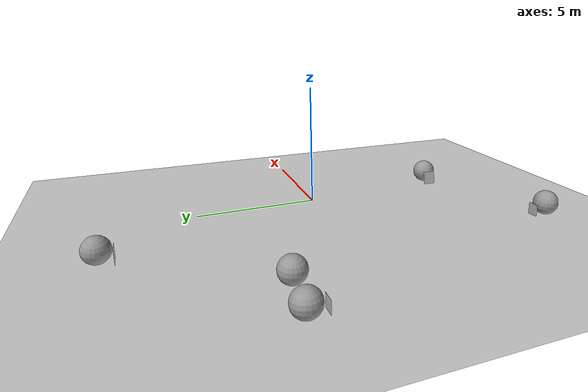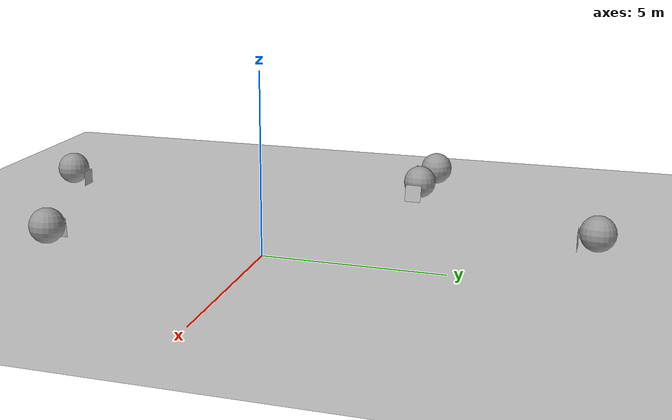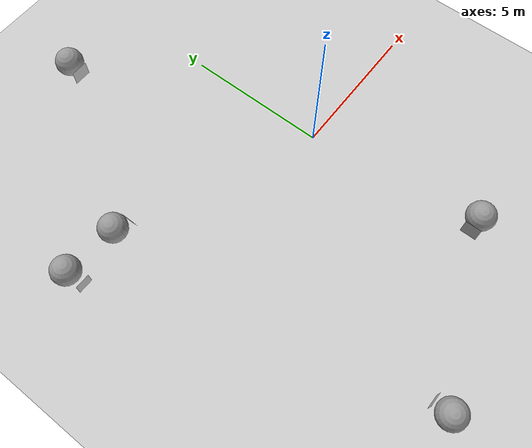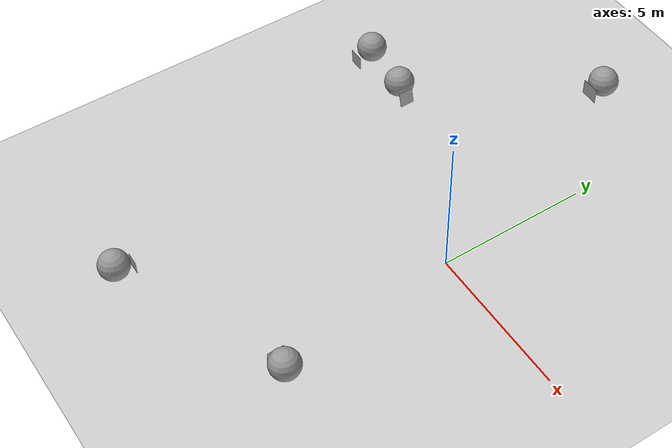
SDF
<sdf version="1.7">
 <world name="default">
  <light name="sun" type="directional">
   <pose>0 0 10 0 -0 0</pose>
   <diffuse>0.8 0.8 0.8 1</diffuse>
   <specular>0.2 0.2 0.2 1</specular>
   <attenuation>
    <range>1000</range>
    <constant>0.9</constant>
    <linear>0.01</linear>
    <quadratic>0.001</quadratic>
   </attenuation>
   <direction>-0.5 0.1 -0.9</direction>
   <spot><inner_angle>0</inner_angle><outer_angle>0</outer_angle><falloff>0</falloff></spot>
  </light>
  <model name="ground_plane">
   <static>1</static>
   <link name="link">
    <collision name="collision">
     <geometry><plane><normal>0 0 1</normal><size>100 100</size></plane></geometry>
     <surface>
      <contact><collide_bitmask>65535</collide_bitmask></contact>
      <friction><ode><mu>100</mu><mu2>50</mu2></ode></friction>
     </surface>
    </collision>
    <visual name="visual">
     <cast_shadows>0</cast_shadows>
     <geometry><plane><normal>0 0 1</normal><size>100 100</size></plane></geometry>
     <material>
      <script><uri>file://media/materials/scripts/gazebo.material</uri><name>Gazebo/Grey</name></script>
     </material>
    </visual>
   </link>
  </model>
  <gravity>0 0 -9.8</gravity>
  <magnetic_field>6e-06 2.3e-05 -4.2e-05</magnetic_field>
  <atmosphere type="adiabatic"/>
  <physics type="ode">
   <max_step_size>0.001</max_step_size>
   <real_time_factor>1</real_time_factor>
   <real_time_update_rate>1000</real_time_update_rate>
  </physics>
  <scene><ambient>0.4 0.4 0.4 1</ambient><background>0.7 0.7 0.7 1</background><shadows>1</shadows></scene>
  <spherical_coordinates>
   <surface_model>EARTH_WGS84</surface_model>
   <latitude_deg>0</latitude_deg>
   <longitude_deg>0</longitude_deg>
   <elevation>0</elevation>
   <heading_deg>0</heading_deg>
  </spherical_coordinates>
  <model name="marker11">
   <static>0</static>
   <link name="marker">
    <inertial>
     <mass>0.1</mass>
     <inertia><ixx>0</ixx><ixy>0</ixy><ixz>0</ixz><iyy>0</iyy><iyz>0</iyz><izz>0</izz></inertia>
    </inertial>
    <visual name="visual">
     <geometry><box><size>0.568736 0.617647 0.001</size></box></geometry>
     <material>
      <script>
       <uri>model://marker11/material/scripts</uri>
       <uri>model://marker11/material/textures</uri>
       <name>Aruco/marker11</name>
      </script>
     </material>
    </visual>
    <collision name="collision"><geometry><box><size>0.568736 0.617647 0.02</size></box></geometry></collision>
    <self_collide>1</self_collide>
   </link>
   <pose>-3.05989 8.03861 0.284388 -0.001297 -1.56887 -1.58219</pose>
  </model>
  <model name="marker12">
   <static>0</static>
   <link name="marker">
    <inertial>
     <mass>0.1</mass>
     <inertia><ixx>0</ixx><ixy>0</ixy><ixz>0</ixz><iyy>0</iyy><iyz>0</iyz><izz>0</izz></inertia>
    </inertial>
    <visual name="visual">
     <geometry><box><size>0.518074 0.498374 0.001</size></box></geometry>
     <material>
      <script>
       <uri>model://marker12/material/scripts</uri>
       <uri>model://marker12/material/textures</uri>
       <name>Aruco/marker12</name>
      </script>
     </material>
    </visual>
    <collision name="collision"><geometry><box><size>0.518074 0.498374 0.02</size></box></geometry></collision>
    <self_collide>1</self_collide>
   </link>
   <pose>-6.20834 2.8244 0.254641 -3.14159 -1.34397 3.13721</pose>
  </model>
  <model name="marker14">
   <static>0</static>
   <link name="marker">
    <inertial>
     <mass>0.1</mass>
     <inertia><ixx>0</ixx><ixy>0</ixy><ixz>0</ixz><iyy>0</iyy><iyz>0</iyz><izz>0</izz></inertia>
    </inertial>
    <visual name="visual">
     <geometry><box><size>0.483286 0.47867 0.001</size></box></geometry>
     <material>
      <script>
       <uri>model://marker14/material/scripts</uri>
       <uri>model://marker14/material/textures</uri>
       <name>Aruco/marker14</name>
      </script>
     </material>
    </visual>
    <collision name="collision"><geometry><box><size>0.483286 0.47867 0.02</size></box></geometry></collision>
    <self_collide>1</self_collide>
   </link>
   <pose>-5.03348 -7.888 0.241643 0.163924 1.57079 1.72005</pose>
  </model>
  <model name="marker15">
   <static>0</static>
   <link name="marker">
    <inertial>
     <mass>0.1</mass>
     <inertia><ixx>0</ixx><ixy>0</ixy><ixz>0</ixz><iyy>0</iyy><iyz>0</iyz><izz>0</izz></inertia>
    </inertial>
    <visual name="visual">
     <geometry><box><size>0.494346 0.513607 0.001</size></box></geometry>
     <material>
      <script>
       <uri>model://marker15/material/scripts</uri>
       <uri>model://marker15/material/textures</uri>
       <name>Aruco/marker15</name>
      </script>
     </material>
    </visual>
    <collision name="collision"><geometry><box><size>0.494346 0.513607 0.02</size></box></geometry></collision>
    <self_collide>1</self_collide>
   </link>
   <pose>-8.64053 2.44414 0.247176 2.67149 -1.57077 2.03262</pose>
  </model>
  <model name="static_sphere_0">
   <link name="link">
    <inertial>
     <mass>1</mass>
     <inertia><ixx>0.1</ixx><ixy>0</ixy><ixz>0</ixz><iyy>0.1</iyy><iyz>0</iyz><izz>0.1</izz></inertia>
    </inertial>
    <visual name="visual">
     <geometry><sphere><radius>0.5</radius></sphere></geometry>
     <material>
      <script><name>Gazebo/Grey</name><uri>file://media/materials/scripts/gazebo.material</uri></script>
      <shader type="pixel"/>
     </material>
    </visual>
    <collision name="collision">
     <geometry><sphere><radius>0.5</radius></sphere></geometry>
     <surface>
      <friction>
       <ode><mu>1</mu><mu2>1</mu2><fdir1>0 0 0</fdir1><slip1>0</slip1><slip2>0</slip2></ode>
       <torsional>
        <coefficient>1</coefficient>
        <patch_radius>0</patch_radius>
        <surface_radius>0</surface_radius>
        <use_patch_radius>1</use_patch_radius>
        <ode><slip>0</slip></ode>
       </torsional>
      </friction>
      <bounce><restitution_coefficient>0</restitution_coefficient><threshold>1e+06</threshold></bounce>
      <contact>
       <collide_without_contact>0</collide_without_contact>
       <collide_without_contact_bitmask>1</collide_without_contact_bitmask>
       <collide_bitmask>1</collide_bitmask>
       <ode>
        <soft_cfm>0</soft_cfm>
        <soft_erp>0.2</soft_erp>
        <kp>1e+13</kp>
        <kd>1</kd>
        <max_vel>0.01</max_vel>
        <min_depth>0</min_depth>
       </ode>
       <bullet>
        <split_impulse>1</split_impulse>
        <split_impulse_penetration_threshold>-0.01</split_impulse_penetration_threshold>
        <soft_cfm>0</soft_cfm>
        <soft_erp>0.2</soft_erp>
        <kp>1e+13</kp>
        <kd>1</kd>
       </bullet>
      </contact>
     </surface>
    </collision>
   </link>
   <static>1</static>
   <pose>-6.77589 2.92367 0.49999 -0.000133 -0.131807 -0.000347</pose>
  </model>
  <model name="static_sphere_0_clone">
   <link name="link">
    <inertial>
     <mass>1</mass>
     <inertia><ixx>0.1</ixx><ixy>0</ixy><ixz>0</ixz><iyy>0.1</iyy><iyz>0</iyz><izz>0.1</izz></inertia>
    </inertial>
    <visual name="visual">
     <geometry><sphere><radius>0.5</radius></sphere></geometry>
     <material>
      <script><name>Gazebo/Grey</name><uri>file://media/materials/scripts/gazebo.material</uri></script>
      <shader type="pixel"/>
     </material>
    </visual>
    <collision name="collision">
     <geometry><sphere><radius>0.5</radius></sphere></geometry>
     <surface>
      <friction>
       <ode><mu>1</mu><mu2>1</mu2><fdir1>0 0 0</fdir1><slip1>0</slip1><slip2>0</slip2></ode>
       <torsional>
        <coefficient>1</coefficient>
        <patch_radius>0</patch_radius>
        <surface_radius>0</surface_radius>
        <use_patch_radius>1</use_patch_radius>
        <ode><slip>0</slip></ode>
       </torsional>
      </friction>
      <bounce><restitution_coefficient>0</restitution_coefficient><threshold>1e+06</threshold></bounce>
      <contact>
       <collide_without_contact>0</collide_without_contact>
       <collide_without_contact_bitmask>1</collide_without_contact_bitmask>
       <collide_bitmask>1</collide_bitmask>
       <ode>
        <soft_cfm>0</soft_cfm>
        <soft_erp>0.2</soft_erp>
        <kp>1e+13</kp>
        <kd>1</kd>
        <max_vel>0.01</max_vel>
        <min_depth>0</min_depth>
       </ode>
       <bullet>
        <split_impulse>1</split_impulse>
        <split_impulse_penetration_threshold>-0.01</split_impulse_penetration_threshold>
        <soft_cfm>0</soft_cfm>
        <soft_erp>0.2</soft_erp>
        <kp>1e+13</kp>
        <kd>1</kd>
       </bullet>
      </contact>
     </surface>
    </collision>
   </link>
   <static>1</static>
   <pose>0.693093 -6.05683 0.49999 -0.000133 -0.131807 -0.000347</pose>
  </model>
  <model name="static_sphere_0_clone_0">
   <link name="link">
    <inertial>
     <mass>1</mass>
     <inertia><ixx>0.1</ixx><ixy>0</ixy><ixz>0</ixz><iyy>0.1</iyy><iyz>0</iyz><izz>0.1</izz></inertia>
    </inertial>
    <visual name="visual">
     <geometry><sphere><radius>0.5</radius></sphere></geometry>
     <material>
      <script><name>Gazebo/Grey</name><uri>file://media/materials/scripts/gazebo.material</uri></script>
      <shader type="pixel"/>
     </material>
    </visual>
    <collision name="collision">
     <geometry><sphere><radius>0.5</radius></sphere></geometry>
     <surface>
      <friction>
       <ode><mu>1</mu><mu2>1</mu2><fdir1>0 0 0</fdir1><slip1>0</slip1><slip2>0</slip2></ode>
       <torsional>
        <coefficient>1</coefficient>
        <patch_radius>0</patch_radius>
        <surface_radius>0</surface_radius>
        <use_patch_radius>1</use_patch_radius>
        <ode><slip>0</slip></ode>
       </torsional>
      </friction>
      <bounce><restitution_coefficient>0</restitution_coefficient><threshold>1e+06</threshold></bounce>
      <contact>
       <collide_without_contact>0</collide_without_contact>
       <collide_without_contact_bitmask>1</collide_without_contact_bitmask>
       <collide_bitmask>1</collide_bitmask>
       <ode>
        <soft_cfm>0</soft_cfm>
        <soft_erp>0.2</soft_erp>
        <kp>1e+13</kp>
        <kd>1</kd>
        <max_vel>0.01</max_vel>
        <min_depth>0</min_depth>
       </ode>
       <bullet>
        <split_impulse>1</split_impulse>
        <split_impulse_penetration_threshold>-0.01</split_impulse_penetration_threshold>
        <soft_cfm>0</soft_cfm>
        <soft_erp>0.2</soft_erp>
        <kp>1e+13</kp>
        <kd>1</kd>
       </bullet>
      </contact>
     </surface>
    </collision>
   </link>
   <static>1</static>
   <pose>-3.02706 8.56563 0.49999 -0.000133 -0.131807 -0.000347</pose>
  </model>
  <model name="static_sphere_0_clone_1">
   <link name="link">
    <inertial>
     <mass>1</mass>
     <inertia><ixx>0.1</ixx><ixy>0</ixy><ixz>0</ixz><iyy>0.1</iyy><iyz>0</iyz><izz>0.1</izz></inertia>
    </inertial>
    <visual name="visual">
     <geometry><sphere><radius>0.5</radius></sphere></geometry>
     <material>
      <script><name>Gazebo/Grey</name><uri>file://media/materials/scripts/gazebo.material</uri></script>
      <shader type="pixel"/>
     </material>
    </visual>
    <collision name="collision">
     <geometry><sphere><radius>0.5</radius></sphere></geometry>
     <surface>
      <friction>
       <ode><mu>1</mu><mu2>1</mu2><fdir1>0 0 0</fdir1><slip1>0</slip1><slip2>0</slip2></ode>
       <torsional>
        <coefficient>1</coefficient>
        <patch_radius>0</patch_radius>
        <surface_radius>0</surface_radius>
        <use_patch_radius>1</use_patch_radius>
        <ode><slip>0</slip></ode>
       </torsional>
      </friction>
      <bounce><restitution_coefficient>0</restitution_coefficient><threshold>1e+06</threshold></bounce>
      <contact>
       <collide_without_contact>0</collide_without_contact>
       <collide_without_contact_bitmask>1</collide_without_contact_bitmask>
       <collide_bitmask>1</collide_bitmask>
       <ode>
        <soft_cfm>0</soft_cfm>
        <soft_erp>0.2</soft_erp>
        <kp>1e+13</kp>
        <kd>1</kd>
        <max_vel>0.01</max_vel>
        <min_depth>0</min_depth>
       </ode>
       <bullet>
        <split_impulse>1</split_impulse>
        <split_impulse_penetration_threshold>-0.01</split_impulse_penetration_threshold>
        <soft_cfm>0</soft_cfm>
        <soft_erp>0.2</soft_erp>
        <kp>1e+13</kp>
        <kd>1</kd>
       </bullet>
      </contact>
     </surface>
    </collision>
   </link>
   <static>1</static>
   <pose>-5.1033 -8.45105 0.49999 -0.000133 -0.131807 -0.000347</pose>
  </model>
  <model name="static_sphere_0_clone_2">
   <link name="link">
    <inertial>
     <mass>1</mass>
     <inertia><ixx>0.1</ixx><ixy>0</ixy><ixz>0</ixz><iyy>0.1</iyy><iyz>0</iyz><izz>0.1</izz></inertia>
    </inertial>
    <visual name="visual">
     <geometry><sphere><radius>0.5</radius></sphere></geometry>
     <material>
      <script><name>Gazebo/Grey</name><uri>file://media/materials/scripts/gazebo.material</uri></script>
      <shader type="pixel"/>
     </material>
    </visual>
    <collision name="collision">
     <geometry><sphere><radius>0.5</radius></sphere></geometry>
     <surface>
      <friction>
       <ode><mu>1</mu><mu2>1</mu2><fdir1>0 0 0</fdir1><slip1>0</slip1><slip2>0</slip2></ode>
       <torsional>
        <coefficient>1</coefficient>
        <patch_radius>0</patch_radius>
        <surface_radius>0</surface_radius>
        <use_patch_radius>1</use_patch_radius>
        <ode><slip>0</slip></ode>
       </torsional>
      </friction>
      <bounce><restitution_coefficient>0</restitution_coefficient><threshold>1e+06</threshold></bounce>
      <contact>
       <collide_without_contact>0</collide_without_contact>
       <collide_without_contact_bitmask>1</collide_without_contact_bitmask>
       <collide_bitmask>1</collide_bitmask>
       <ode>
        <soft_cfm>0</soft_cfm>
        <soft_erp>0.2</soft_erp>
        <kp>1e+13</kp>
        <kd>1</kd>
        <max_vel>0.01</max_vel>
        <min_depth>0</min_depth>
       </ode>
       <bullet>
        <split_impulse>1</split_impulse>
        <split_impulse_penetration_threshold>-0.01</split_impulse_penetration_threshold>
        <soft_cfm>0</soft_cfm>
        <soft_erp>0.2</soft_erp>
        <kp>1e+13</kp>
        <kd>1</kd>
       </bullet>
      </contact>
     </surface>
    </collision>
   </link>
   <static>1</static>
   <pose>-8.69162 3.10644 0.477712 -0.000132 0.042076 -0.00037</pose>
  </model>
  <model name="marker13">
   <static>0</static>
   <link name="marker">
    <inertial>
     <mass>0.1</mass>
     <inertia><ixx>0</ixx><ixy>0</ixy><ixz>0</ixz><iyy>0</iyy><iyz>0</iyz><izz>0</izz></inertia>
    </inertial>
    <visual name="visual">
     <geometry><box><size>0.587663 0.560725 0.001</size></box></geometry>
     <material>
      <script>
       <uri>model://marker13/material/scripts</uri>
       <uri>model://marker13/material/textures</uri>
       <name>Aruco/marker13</name>
      </script>
     </material>
    </visual>
    <collision name="collision"><geometry><box><size>0.587663 0.560725 0.02</size></box></geometry></collision>
    <self_collide>1</self_collide>
   </link>
   <pose>0.153285 -6.04939 0.293202 0 -1.463 0</pose>
  </model>
 </world>
</sdf>
